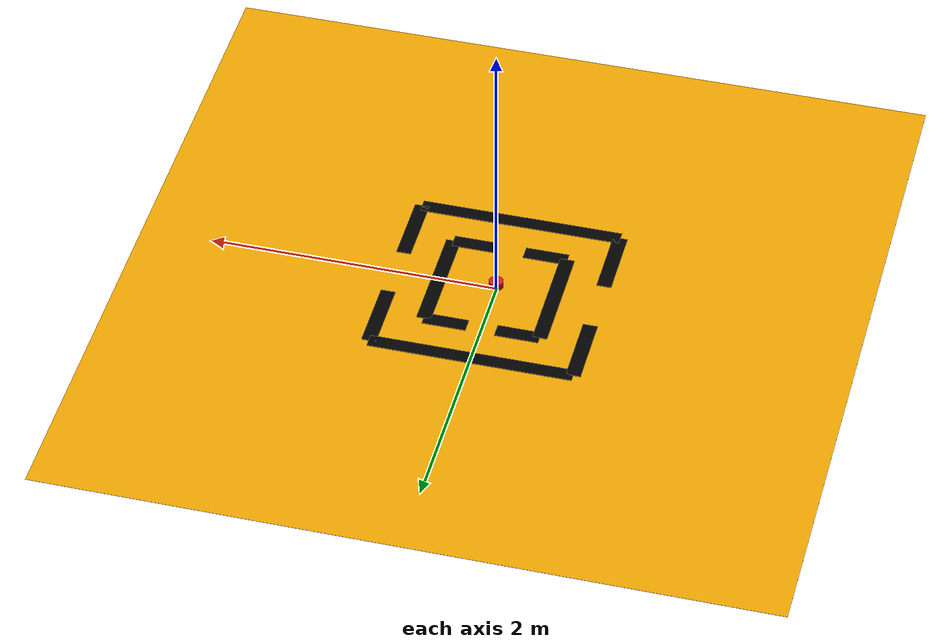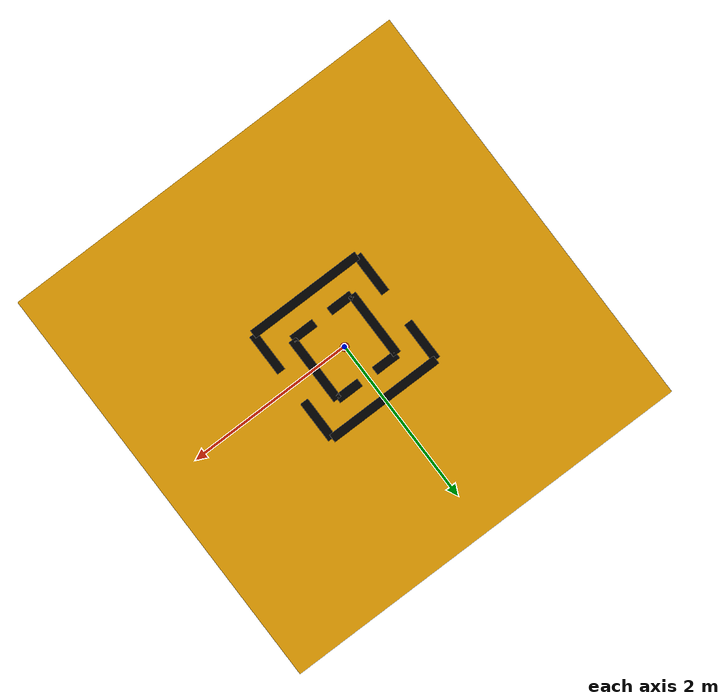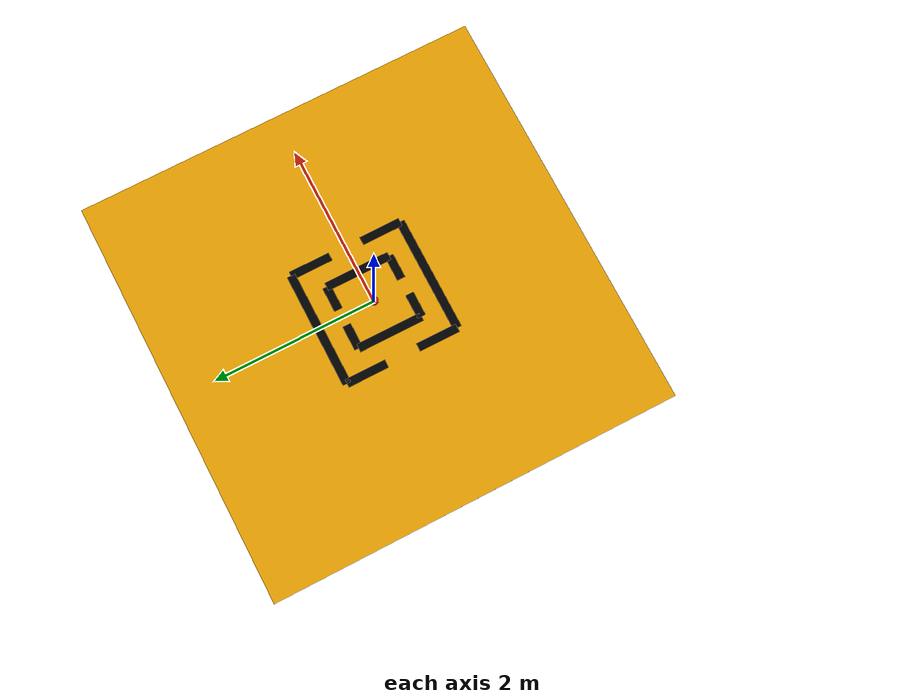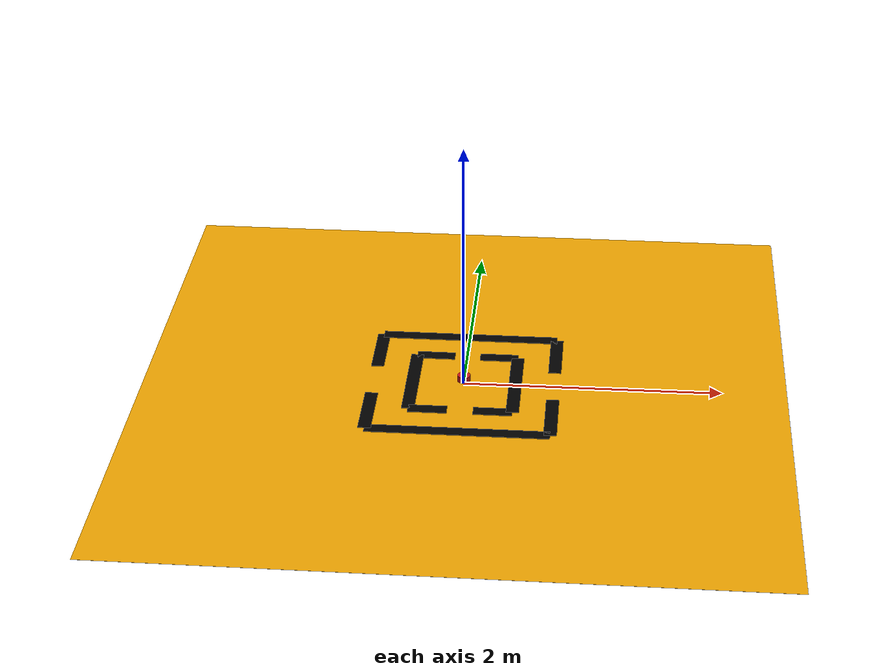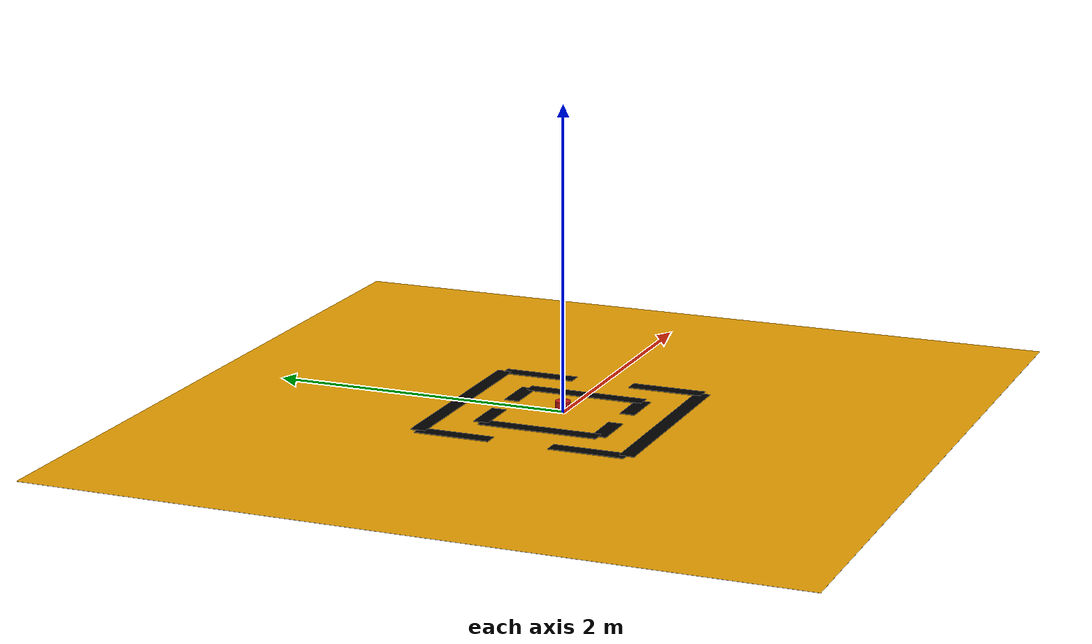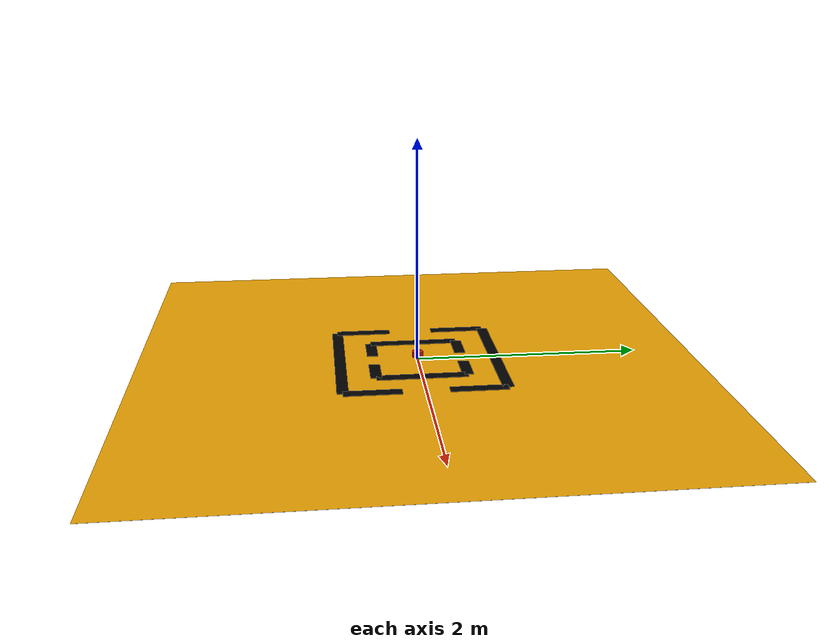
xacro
<?xml version="1.0"?>
<robot xmlns:xacro="http://www.ros.org/wiki/xacro" name="maze">

    <material name="black">
        <color rgba="0 0 0 1"/>
    </material>
    <material name="red">
        <color rgba="0.8 0.1 0.1 1"/>
    </material>
    <material name="blue">
        <color rgba="0.1 0.1 0.9 1"/>
    </material>
    <material name="white">
        <color rgba="1 1 1 1"/>
    </material>

    <link name="base_link">
        <origin rpy="0.0 0.0 0.0" xyz="0 0 0.00"/>
        <visual>
            <geometry>
                <box size="5 5 0.001"/>
            </geometry>
        </visual>
    </link>

    <xacro:macro name="obs" params="name l b x y">
    <link name="obs_${name}">
        <visual>
            <origin rpy="0.0 0.0 0.0" xyz="0.0 0.0 0.0"/>
            <geometry>
                <box size="${l} ${b} 0.01"/>
            </geometry>
            <material name="black"/>
        </visual>
        <collision>
            <origin rpy="0.0 0.0 0.0" xyz="0.0 0.0 0.0"/>
            <geometry>
                <box size="${l} ${b} 0.15"/>
            </geometry>
        </collision>
        <inertial>
            <mass value="10000"/>
            <inertia ixx="100"  ixy="0"  ixz="0" iyy="100" iyz="0" izz="100" />
        </inertial>
    </link>

    <joint name="base_to_obs_${name}" type="fixed">
        <parent link="base_link"/>
        <child link="obs_${name}"/>
        <origin xyz="${x} ${y} 0.0"/>
    </joint>
    </xacro:macro>

    <xacro:macro name="bot" params="radius mass">
    <link name="bot_x">
         <origin rpy="0.0 0.0 0.0" xyz="0.0 0.0 0.0"/>
    </link>
    <link name="bot">
        <visual>
            <origin rpy="0.0 0.0 0.0" xyz="0 0 0.03"/>
            <geometry>
                <cylinder radius="${radius}" length="0.05"/>
            </geometry>
            <material name="red"/>
        </visual>
        <collision>
            <origin rpy="0.0 0.0 0.0" xyz="0 0 0.03"/>
            <geometry>
                <cylinder radius="${radius}" length="0.05"/>
            </geometry>
        </collision>
        <inertial>
            <origin xyz="0 0 0" rpy="0 0 0"/>
            <mass value="${mass}"/>
        </inertial>
    </link>

    <joint name="base_to_bot_x" type="prismatic">
        <parent link="base_link"/>
        <child link="bot_x"/>
        <origin rpy="0 0 0" xyz="0 0 0.01"/>
        <axis xyz="1 0 0"/>
    </joint>

    <joint name="bot_x_to_bot" type="prismatic">
        <parent link="bot_x"/>
        <child link="bot"/>
        <origin rpy="0 0 0" xyz="0 0 0.01"/>
        <axis xyz="0 1 0"/>
    </joint>
    </xacro:macro>

   <xacro:obs name="l1" l="0.1" b="0.8" x="-0.4" y="0.0"/>
   <xacro:obs name="l2" l="0.3" b="0.1" x="${-0.4+0.15}" y="0.4"/>
   <xacro:obs name="l3" l="0.3" b="0.1" x="${-0.4+0.15}" y="-0.4"/>

   <xacro:obs name="r1" l="0.1" b="0.8" x="0.4" y="0.0"/>
   <xacro:obs name="r2" l="0.3" b="0.1" x="${0.4-0.15}" y="0.4"/>
   <xacro:obs name="r3" l="0.3" b="0.1" x="${0.4-0.15}" y="-0.4"/>

   <xacro:obs name="t1" l="1.4" b="0.1" x="0.0" y="0.7"/>
   <xacro:obs name="t2" l="0.1" b="0.5" x="-0.7" y="${0.7-0.25}"/>
   <xacro:obs name="t3" l="0.1" b="0.5" x="0.7" y="${0.7-0.25}"/>

   <xacro:obs name="b1" l="1.4" b="0.1" x="0.0" y="-0.7"/>
   <xacro:obs name="b2" l="0.1" b="0.5" x="-0.7" y="${-0.7+0.25}"/>
   <xacro:obs name="b3" l="0.1" b="0.5" x="0.7" y="${-0.7+0.25}"/>

   <xacro:bot radius="0.05" mass="0.2"/>

</robot>
